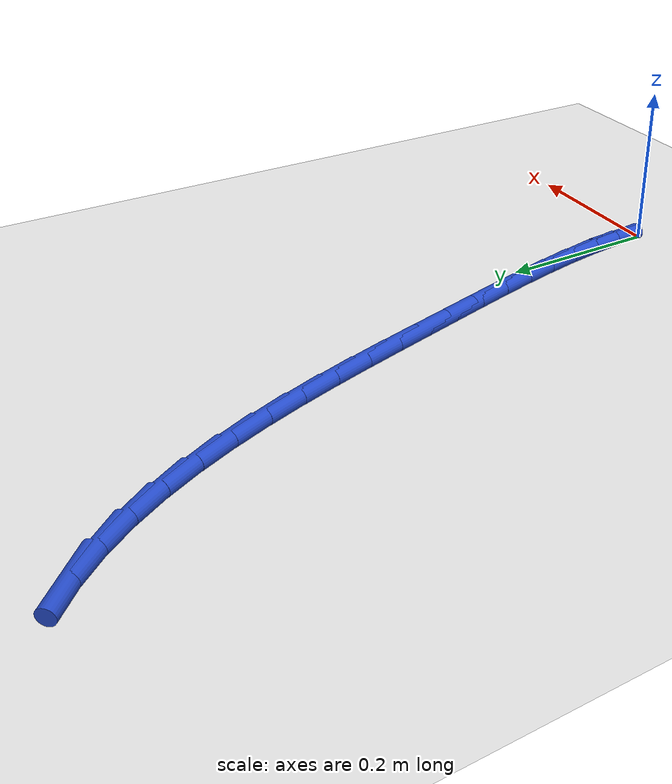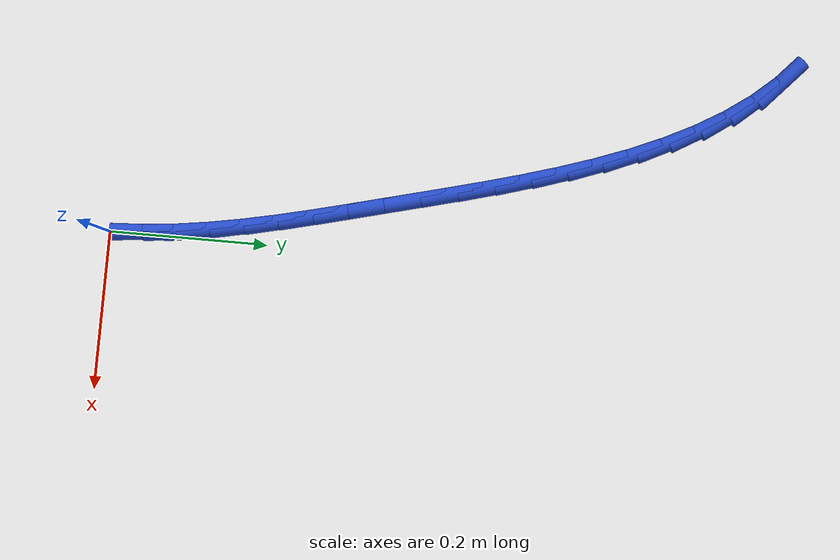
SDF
<sdf version="1.6">
 <world name="default">
  <model name="ground_plane">
   <static>1</static>
   <link name="link">
    <collision name="collision">
     <geometry><plane><normal>0 0 1</normal><size>100 100</size></plane></geometry>
     <surface><friction><ode><mu>100</mu><mu2>50</mu2></ode></friction></surface>
    </collision>
    <visual name="visual">
     <cast_shadows>0</cast_shadows>
     <geometry><plane><normal>0 0 1</normal><size>100 100</size></plane></geometry>
     <material>
      <script><uri>file://media/materials/scripts/gazebo.material</uri><name>Gazebo/WhiteGlow</name></script>
     </material>
    </visual>
   </link>
  </model>
  <model name="line">
   <link name="link_1">
    <pose>-0.0022061180582929395 0.04192881055583981 0.01 0 1.57 -1.4680219667394454</pose>
    <collision name="collision">
     <geometry><cylinder><radius>0.01</radius><length>0.08</length></cylinder></geometry>
    </collision>
    <visual name="visual">
     <material>
      <script><name>Gazebo/Blue</name><uri>file://media/materials/scripts/gazebo.material</uri></script>
     </material>
     <geometry><cylinder><radius>0.01</radius><length>0.08</length></cylinder></geometry>
    </visual>
   </link>
   <link name="link_2">
    <pose>-0.006507748239843275 0.08363643181017488 0.01 0 1.57 -1.4246012355314652</pose>
    <collision name="collision">
     <geometry><cylinder><radius>0.01</radius><length>0.08</length></cylinder></geometry>
    </collision>
    <visual name="visual">
     <material>
      <script><name>Gazebo/Blue</name><uri>file://media/materials/scripts/gazebo.material</uri></script>
     </material>
     <geometry><cylinder><radius>0.01</radius><length>0.08</length></cylinder></geometry>
    </visual>
   </link>
   <link name="link_3">
    <pose>-0.012638954123299352 0.12527574199859687 0.01 0 1.57 -1.3884224651269705</pose>
    <collision name="collision">
     <geometry><cylinder><radius>0.01</radius><length>0.08</length></cylinder></geometry>
    </collision>
    <visual name="visual">
     <material>
      <script><name>Gazebo/Blue</name><uri>file://media/materials/scripts/gazebo.material</uri></script>
     </material>
     <geometry><cylinder><radius>0.01</radius><length>0.08</length></cylinder></geometry>
    </visual>
   </link>
   <link name="link_4">
    <pose>-0.02033379928730955 0.16699961935669771 0.01 0 1.57 -1.359683945157406</pose>
    <collision name="collision">
     <geometry><cylinder><radius>0.01</radius><length>0.08</length></cylinder></geometry>
    </collision>
    <visual name="visual">
     <material>
      <script><name>Gazebo/Blue</name><uri>file://media/materials/scripts/gazebo.material</uri></script>
     </material>
     <geometry><cylinder><radius>0.01</radius><length>0.08</length></cylinder></geometry>
    </visual>
   </link>
   <link name="link_5">
    <pose>-0.029326347310522242 0.20896094212006916 0.01 0 1.57 -1.3383811070145977</pose>
    <collision name="collision">
     <geometry><cylinder><radius>0.01</radius><length>0.08</length></cylinder></geometry>
    </collision>
    <visual name="visual">
     <material>
      <script><name>Gazebo/Blue</name><uri>file://media/materials/scripts/gazebo.material</uri></script>
     </material>
     <geometry><cylinder><radius>0.01</radius><length>0.08</length></cylinder></geometry>
    </visual>
   </link>
   <link name="link_6">
    <pose>-0.03935066177158577 0.251312588524303 0.01 0 1.57 -1.3243605703124162</pose>
    <collision name="collision">
     <geometry><cylinder><radius>0.01</radius><length>0.08</length></cylinder></geometry>
    </collision>
    <visual name="visual">
     <material>
      <script><name>Gazebo/Blue</name><uri>file://media/materials/scripts/gazebo.material</uri></script>
     </material>
     <geometry><cylinder><radius>0.01</radius><length>0.08</length></cylinder></geometry>
    </visual>
   </link>
   <link name="link_7">
    <pose>-0.050140806249148524 0.294207436804991 0.01 0 1.57 -1.3173654427160473</pose>
    <collision name="collision">
     <geometry><cylinder><radius>0.01</radius><length>0.08</length></cylinder></geometry>
    </collision>
    <visual name="visual">
     <material>
      <script><name>Gazebo/Blue</name><uri>file://media/materials/scripts/gazebo.material</uri></script>
     </material>
     <geometry><cylinder><radius>0.01</radius><length>0.08</length></cylinder></geometry>
    </visual>
   </link>
   <link name="link_8">
    <pose>-0.06143084432185886 0.3377983651977251 0.01 0 1.57 -1.3168349489651683</pose>
    <collision name="collision">
     <geometry><cylinder><radius>0.01</radius><length>0.08</length></cylinder></geometry>
    </collision>
    <visual name="visual">
     <material>
      <script><name>Gazebo/Blue</name><uri>file://media/materials/scripts/gazebo.material</uri></script>
     </material>
     <geometry><cylinder><radius>0.01</radius><length>0.08</length></cylinder></geometry>
    </visual>
   </link>
   <link name="link_9">
    <pose>-0.07296340628807133 0.3822285586163784 0.01 0 1.57 -1.3163146088564928</pose>
    <collision name="collision">
     <geometry><cylinder><radius>0.01</radius><length>0.08</length></cylinder></geometry>
    </collision>
    <visual name="visual">
     <material>
      <script><name>Gazebo/Blue</name><uri>file://media/materials/scripts/gazebo.material</uri></script>
     </material>
     <geometry><cylinder><radius>0.01</radius><length>0.08</length></cylinder></geometry>
    </visual>
   </link>
   <link name="link_10">
    <pose>-0.08470910282650652 0.42738324008880624 0.01 0 1.57 -1.3092367721181193</pose>
    <collision name="collision">
     <geometry><cylinder><radius>0.01</radius><length>0.08</length></cylinder></geometry>
    </collision>
    <visual name="visual">
     <material>
      <script><name>Gazebo/Blue</name><uri>file://media/materials/scripts/gazebo.material</uri></script>
     </material>
     <geometry><cylinder><radius>0.01</radius><length>0.08</length></cylinder></geometry>
    </visual>
   </link>
   <link name="link_11">
    <pose>-0.09688516991622112 0.47286857385933057 0.01 0 1.57 -1.295304637202215</pose>
    <collision name="collision">
     <geometry><cylinder><radius>0.01</radius><length>0.08</length></cylinder></geometry>
    </collision>
    <visual name="visual">
     <material>
      <script><name>Gazebo/Blue</name><uri>file://media/materials/scripts/gazebo.material</uri></script>
     </material>
     <geometry><cylinder><radius>0.01</radius><length>0.08</length></cylinder></geometry>
    </visual>
   </link>
   <link name="link_12">
    <pose>-0.10972114646521612 0.5182768032956219 0.01 0 1.57 -1.2742741325236298</pose>
    <collision name="collision">
     <geometry><cylinder><radius>0.01</radius><length>0.08</length></cylinder></geometry>
    </collision>
    <visual name="visual">
     <material>
      <script><name>Gazebo/Blue</name><uri>file://media/materials/scripts/gazebo.material</uri></script>
     </material>
     <geometry><cylinder><radius>0.01</radius><length>0.08</length></cylinder></geometry>
    </visual>
   </link>
   <link name="link_13">
    <pose>-0.1234465713814924 0.5632001717653504 0.01 0 1.57 -1.245626042232707</pose>
    <collision name="collision">
     <geometry><cylinder><radius>0.01</radius><length>0.08</length></cylinder></geometry>
    </collision>
    <visual name="visual">
     <material>
      <script><name>Gazebo/Blue</name><uri>file://media/materials/scripts/gazebo.material</uri></script>
     </material>
     <geometry><cylinder><radius>0.01</radius><length>0.08</length></cylinder></geometry>
    </visual>
   </link>
   <link name="link_14">
    <pose>-0.1382909835730509 0.6072309226361868 0.01 0 1.57 -1.208561783417686</pose>
    <collision name="collision">
     <geometry><cylinder><radius>0.01</radius><length>0.08</length></cylinder></geometry>
    </collision>
    <visual name="visual">
     <material>
      <script><name>Gazebo/Blue</name><uri>file://media/materials/scripts/gazebo.material</uri></script>
     </material>
     <geometry><cylinder><radius>0.01</radius><length>0.08</length></cylinder></geometry>
    </visual>
   </link>
   <link name="link_15">
    <pose>-0.15448392194789257 0.6499612992758016 0.01 0 1.57 -1.1619973383360662</pose>
    <collision name="collision">
     <geometry><cylinder><radius>0.01</radius><length>0.08</length></cylinder></geometry>
    </collision>
    <visual name="visual">
     <material>
      <script><name>Gazebo/Blue</name><uri>file://media/materials/scripts/gazebo.material</uri></script>
     </material>
     <geometry><cylinder><radius>0.01</radius><length>0.08</length></cylinder></geometry>
    </visual>
   </link>
   <link name="link_16">
    <pose>-0.17225492541401838 0.6909835450518651 0.01 0 1.57 -1.1045729637587336</pose>
    <collision name="collision">
     <geometry><cylinder><radius>0.01</radius><length>0.08</length></cylinder></geometry>
    </collision>
    <visual name="visual">
     <material>
      <script><name>Gazebo/Blue</name><uri>file://media/materials/scripts/gazebo.material</uri></script>
     </material>
     <geometry><cylinder><radius>0.01</radius><length>0.08</length></cylinder></geometry>
    </visual>
   </link>
   <link name="link_17">
    <pose>-0.19183353287942922 0.7298899033320482 0.01 0 1.57 -1.0347105124376785</pose>
    <collision name="collision">
     <geometry><cylinder><radius>0.01</radius><length>0.08</length></cylinder></geometry>
    </collision>
    <visual name="visual">
     <material>
      <script><name>Gazebo/Blue</name><uri>file://media/materials/scripts/gazebo.material</uri></script>
     </material>
     <geometry><cylinder><radius>0.01</radius><length>0.08</length></cylinder></geometry>
    </visual>
   </link>
   <link name="link_18">
    <pose>-0.2134492832521261 0.7662726174840209 0.01 0 1.57 -0.9507718071134559</pose>
    <collision name="collision">
     <geometry><cylinder><radius>0.01</radius><length>0.08</length></cylinder></geometry>
    </collision>
    <visual name="visual">
     <material>
      <script><name>Gazebo/Blue</name><uri>file://media/materials/scripts/gazebo.material</uri></script>
     </material>
     <geometry><cylinder><radius>0.01</radius><length>0.08</length></cylinder></geometry>
    </visual>
   </link>
   <link name="link_19">
    <pose>-0.23733171544010984 0.7997239308754538 0.01 0 1.57 -0.8513926401211741</pose>
    <collision name="collision">
     <geometry><cylinder><radius>0.01</radius><length>0.08</length></cylinder></geometry>
    </collision>
    <visual name="visual">
     <material>
      <script><name>Gazebo/Blue</name><uri>file://media/materials/scripts/gazebo.material</uri></script>
     </material>
     <geometry><cylinder><radius>0.01</radius><length>0.08</length></cylinder></geometry>
    </visual>
   </link>
   <link name="link_20">
    <pose>-0.2637103683513814 0.8298360868740172 0.01 0 1.57 -0.7360568193239986</pose>
    <collision name="collision">
     <geometry><cylinder><radius>0.01</radius><length>0.08</length></cylinder></geometry>
    </collision>
    <visual name="visual">
     <material>
      <script><name>Gazebo/Blue</name><uri>file://media/materials/scripts/gazebo.material</uri></script>
     </material>
     <geometry><cylinder><radius>0.01</radius><length>0.08</length></cylinder></geometry>
    </visual>
   </link>
   <link name="link_171">
    <pose>-0.0022653607930063664 0.041884958034826995 0.01 0 1.57 -1.5167636650752379</pose>
    <collision name="collision">
     <geometry><cylinder><radius>0.01</radius><length>0.08</length></cylinder></geometry>
    </collision>
    <visual name="visual">
     <material>
      <script><name>Gazebo/Blue</name><uri>file://media/materials/scripts/gazebo.material</uri></script>
     </material>
     <geometry><cylinder><radius>0.01</radius><length>0.08</length></cylinder></geometry>
    </visual>
   </link>
  </model>
 </world>
</sdf>
